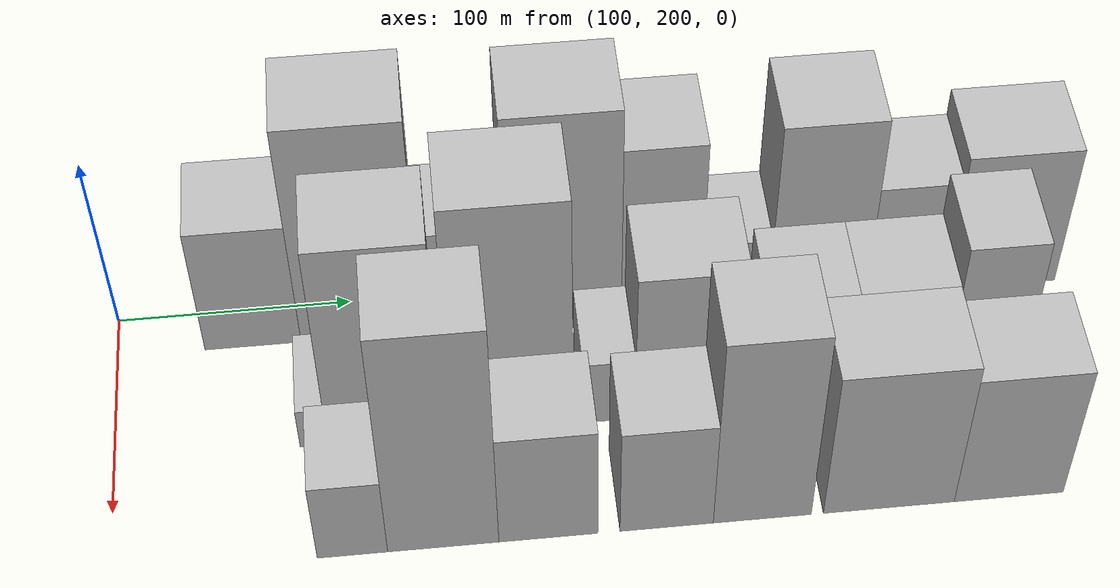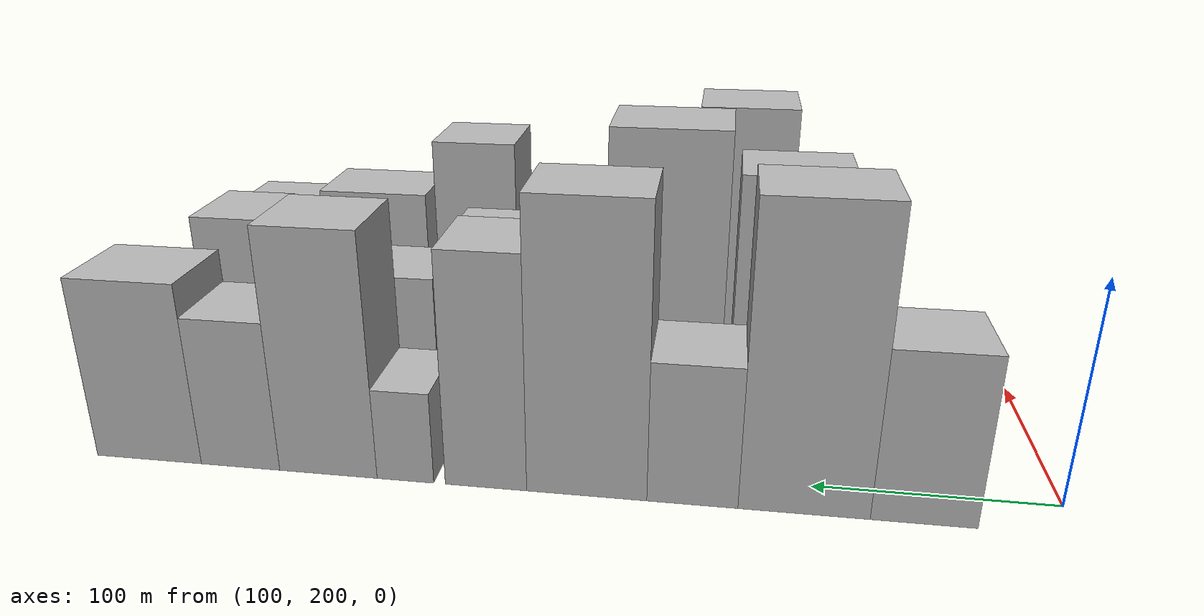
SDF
<sdf version="1.6">
 <world name="default">
  <model name="building_28">
   <static>1</static>
   <pose>100.0000 257.6946 0 0.000000 0.000000 0.000000</pose>
   <link name="link">
    <pose>0 0 37.50 0 0 0</pose>
    <collision name="collision"><geometry><box><size>40.0000 41.0869 75.0000</size></box></geometry></collision>
    <visual name="visual">
     <cast_shadows>0</cast_shadows>
     <geometry><box><size>40.0000 41.0869 75.0000</size></box></geometry>
     <material>
      <script>
       <uri>model://HANNAS_wall/materials/scripts</uri>
       <uri>model://HANNAS_wall/materials/textures</uri>
       <name>vrc/HANNAS_wall</name>
      </script>
     </material>
    </visual>
   </link>
  </model>
  <model name="building_29">
   <static>1</static>
   <pose>100.0000 304.1886 0 0.000000 0.000000 0.000000</pose>
   <link name="link">
    <pose>0 0 66.00 0 0 0</pose>
    <collision name="collision"><geometry><box><size>40.0000 51.9012 132.0000</size></box></geometry></collision>
    <visual name="visual">
     <cast_shadows>0</cast_shadows>
     <geometry><box><size>40.0000 51.9012 132.0000</size></box></geometry>
     <material>
      <script>
       <uri>model://HANNAS_wall/materials/scripts</uri>
       <uri>model://HANNAS_wall/materials/textures</uri>
       <name>vrc/HANNAS_wall</name>
      </script>
     </material>
    </visual>
   </link>
  </model>
  <model name="building_30">
   <static>1</static>
   <pose>100.0000 348.5221 0 0.000000 0.000000 0.000000</pose>
   <link name="link">
    <pose>0 0 31.50 0 0 0</pose>
    <collision name="collision"><geometry><box><size>40.0000 36.7659 63.0000</size></box></geometry></collision>
    <visual name="visual">
     <cast_shadows>0</cast_shadows>
     <geometry><box><size>40.0000 36.7659 63.0000</size></box></geometry>
     <material>
      <script>
       <uri>model://HANNAS_wall/materials/scripts</uri>
       <uri>model://HANNAS_wall/materials/textures</uri>
       <name>vrc/HANNAS_wall</name>
      </script>
     </material>
    </visual>
   </link>
  </model>
  <model name="building_31">
   <static>1</static>
   <pose>100.0000 391.8093 0 0.000000 0.000000 0.000000</pose>
   <link name="link">
    <pose>0 0 64.50 0 0 0</pose>
    <collision name="collision"><geometry><box><size>40.0000 49.8083 129.0000</size></box></geometry></collision>
    <visual name="visual">
     <cast_shadows>0</cast_shadows>
     <geometry><box><size>40.0000 49.8083 129.0000</size></box></geometry>
     <material>
      <script>
       <uri>model://HANNAS_wall/materials/scripts</uri>
       <uri>model://HANNAS_wall/materials/textures</uri>
       <name>vrc/HANNAS_wall</name>
      </script>
     </material>
    </visual>
   </link>
  </model>
  <model name="building_32">
   <static>1</static>
   <pose>100.0000 434.0224 0 0.000000 0.000000 0.000000</pose>
   <link name="link">
    <pose>0 0 52.50 0 0 0</pose>
    <collision name="collision"><geometry><box><size>40.0000 34.6179 105.0000</size></box></geometry></collision>
    <visual name="visual">
     <cast_shadows>0</cast_shadows>
     <geometry><box><size>40.0000 34.6179 105.0000</size></box></geometry>
     <material>
      <script>
       <uri>model://HANNAS_wall/materials/scripts</uri>
       <uri>model://HANNAS_wall/materials/textures</uri>
       <name>vrc/HANNAS_wall</name>
      </script>
     </material>
    </visual>
   </link>
  </model>
  <model name="building_33">
   <static>1</static>
   <pose>100.0000 468.6477 0 0.000000 0.000000 0.000000</pose>
   <link name="link">
    <pose>0 0 21.00 0 0 0</pose>
    <collision name="collision"><geometry><box><size>40.0000 24.6328 42.0000</size></box></geometry></collision>
    <visual name="visual">
     <cast_shadows>0</cast_shadows>
     <geometry><box><size>40.0000 24.6328 42.0000</size></box></geometry>
     <material>
      <script>
       <uri>model://HANNAS_wall/materials/scripts</uri>
       <uri>model://HANNAS_wall/materials/textures</uri>
       <name>vrc/HANNAS_wall</name>
      </script>
     </material>
    </visual>
   </link>
  </model>
  <model name="building_34">
   <static>1</static>
   <pose>100.0000 502.6056 0 0.000000 0.000000 0.000000</pose>
   <link name="link">
    <pose>0 0 55.50 0 0 0</pose>
    <collision name="collision"><geometry><box><size>40.0000 43.2830 111.0000</size></box></geometry></collision>
    <visual name="visual">
     <cast_shadows>0</cast_shadows>
     <geometry><box><size>40.0000 43.2830 111.0000</size></box></geometry>
     <material>
      <script>
       <uri>model://HANNAS_wall/materials/scripts</uri>
       <uri>model://HANNAS_wall/materials/textures</uri>
       <name>vrc/HANNAS_wall</name>
      </script>
     </material>
    </visual>
   </link>
  </model>
  <model name="building_35">
   <static>1</static>
   <pose>100.0000 542.0786 0 0.000000 0.000000 0.000000</pose>
   <link name="link">
    <pose>0 0 34.50 0 0 0</pose>
    <collision name="collision"><geometry><box><size>40.0000 35.6630 69.0000</size></box></geometry></collision>
    <visual name="visual">
     <cast_shadows>0</cast_shadows>
     <geometry><box><size>40.0000 35.6630 69.0000</size></box></geometry>
     <material>
      <script>
       <uri>model://HANNAS_wall/materials/scripts</uri>
       <uri>model://HANNAS_wall/materials/textures</uri>
       <name>vrc/HANNAS_wall</name>
      </script>
     </material>
    </visual>
   </link>
  </model>
  <model name="building_36">
   <static>1</static>
   <pose>100.0000 584.0762 0 0.000000 0.000000 0.000000</pose>
   <link name="link">
    <pose>0 0 42.00 0 0 0</pose>
    <collision name="collision"><geometry><box><size>40.0000 48.3321 84.0000</size></box></geometry></collision>
    <visual name="visual">
     <cast_shadows>0</cast_shadows>
     <geometry><box><size>40.0000 48.3321 84.0000</size></box></geometry>
     <material>
      <script>
       <uri>model://HANNAS_wall/materials/scripts</uri>
       <uri>model://HANNAS_wall/materials/textures</uri>
       <name>vrc/HANNAS_wall</name>
      </script>
     </material>
    </visual>
   </link>
  </model>
  <model name="building_59">
   <static>1</static>
   <pose>155.0000 282.2192 0 0.000000 0.000000 0.000000</pose>
   <link name="link">
    <pose>0 0 12.00 0 0 0</pose>
    <collision name="collision"><geometry><box><size>40.0000 11.4231 24.0000</size></box></geometry></collision>
    <visual name="visual">
     <cast_shadows>0</cast_shadows>
     <geometry><box><size>40.0000 11.4231 24.0000</size></box></geometry>
     <material>
      <script>
       <uri>model://HANNAS_wall/materials/scripts</uri>
       <uri>model://HANNAS_wall/materials/textures</uri>
       <name>vrc/HANNAS_wall</name>
      </script>
     </material>
    </visual>
   </link>
  </model>
  <model name="building_60">
   <static>1</static>
   <pose>155.0000 311.7160 0 0.000000 0.000000 0.000000</pose>
   <link name="link">
    <pose>0 0 61.50 0 0 0</pose>
    <collision name="collision"><geometry><box><size>40.0000 47.5704 123.0000</size></box></geometry></collision>
    <visual name="visual">
     <cast_shadows>0</cast_shadows>
     <geometry><box><size>40.0000 47.5704 123.0000</size></box></geometry>
     <material>
      <script>
       <uri>model://HANNAS_wall/materials/scripts</uri>
       <uri>model://HANNAS_wall/materials/textures</uri>
       <name>vrc/HANNAS_wall</name>
      </script>
     </material>
    </visual>
   </link>
  </model>
  <model name="building_61">
   <static>1</static>
   <pose>155.0000 364.9807 0 0.000000 0.000000 0.000000</pose>
   <link name="link">
    <pose>0 0 70.50 0 0 0</pose>
    <collision name="collision"><geometry><box><size>40.0000 50.9590 141.0000</size></box></geometry></collision>
    <visual name="visual">
     <cast_shadows>0</cast_shadows>
     <geometry><box><size>40.0000 50.9590 141.0000</size></box></geometry>
     <material>
      <script>
       <uri>model://HANNAS_wall/materials/scripts</uri>
       <uri>model://HANNAS_wall/materials/textures</uri>
       <name>vrc/HANNAS_wall</name>
      </script>
     </material>
    </visual>
   </link>
  </model>
  <model name="building_62">
   <static>1</static>
   <pose>155.0000 405.3605 0 0.000000 0.000000 0.000000</pose>
   <link name="link">
    <pose>0 0 19.50 0 0 0</pose>
    <collision name="collision"><geometry><box><size>40.0000 21.8006 39.0000</size></box></geometry></collision>
    <visual name="visual">
     <cast_shadows>0</cast_shadows>
     <geometry><box><size>40.0000 21.8006 39.0000</size></box></geometry>
     <material>
      <script>
       <uri>model://HANNAS_wall/materials/scripts</uri>
       <uri>model://HANNAS_wall/materials/textures</uri>
       <name>vrc/HANNAS_wall</name>
      </script>
     </material>
    </visual>
   </link>
  </model>
  <model name="building_63">
   <static>1</static>
   <pose>155.0000 438.8114 0 0.000000 0.000000 0.000000</pose>
   <link name="link">
    <pose>0 0 45.00 0 0 0</pose>
    <collision name="collision"><geometry><box><size>40.0000 45.1012 90.0000</size></box></geometry></collision>
    <visual name="visual">
     <cast_shadows>0</cast_shadows>
     <geometry><box><size>40.0000 45.1012 90.0000</size></box></geometry>
     <material>
      <script>
       <uri>model://HANNAS_wall/materials/scripts</uri>
       <uri>model://HANNAS_wall/materials/textures</uri>
       <name>vrc/HANNAS_wall</name>
      </script>
     </material>
    </visual>
   </link>
  </model>
  <model name="building_64">
   <static>1</static>
   <pose>155.0000 465.0333 0 0.000000 0.000000 0.000000</pose>
   <link name="link">
    <pose>0 0 9.00 0 0 0</pose>
    <collision name="collision"><geometry><box><size>40.0000 7.3426 18.0000</size></box></geometry></collision>
    <visual name="visual">
     <cast_shadows>0</cast_shadows>
     <geometry><box><size>40.0000 7.3426 18.0000</size></box></geometry>
     <material>
      <script>
       <uri>model://HANNAS_wall/materials/scripts</uri>
       <uri>model://HANNAS_wall/materials/textures</uri>
       <name>vrc/HANNAS_wall</name>
      </script>
     </material>
    </visual>
   </link>
  </model>
  <model name="building_65">
   <static>1</static>
   <pose>155.0000 487.4993 0 0.000000 0.000000 0.000000</pose>
   <link name="link">
    <pose>0 0 34.50 0 0 0</pose>
    <collision name="collision"><geometry><box><size>40.0000 37.5892 69.0000</size></box></geometry></collision>
    <visual name="visual">
     <cast_shadows>0</cast_shadows>
     <geometry><box><size>40.0000 37.5892 69.0000</size></box></geometry>
     <material>
      <script>
       <uri>model://HANNAS_wall/materials/scripts</uri>
       <uri>model://HANNAS_wall/materials/textures</uri>
       <name>vrc/HANNAS_wall</name>
      </script>
     </material>
    </visual>
   </link>
  </model>
  <model name="building_66">
   <static>1</static>
   <pose>155.0000 526.6850 0 0.000000 0.000000 0.000000</pose>
   <link name="link">
    <pose>0 0 34.50 0 0 0</pose>
    <collision name="collision"><geometry><box><size>40.0000 40.7823 69.0000</size></box></geometry></collision>
    <visual name="visual">
     <cast_shadows>0</cast_shadows>
     <geometry><box><size>40.0000 40.7823 69.0000</size></box></geometry>
     <material>
      <script>
       <uri>model://HANNAS_wall/materials/scripts</uri>
       <uri>model://HANNAS_wall/materials/textures</uri>
       <name>vrc/HANNAS_wall</name>
      </script>
     </material>
    </visual>
   </link>
  </model>
  <model name="building_67">
   <static>1</static>
   <pose>155.0000 563.6195 0 0.000000 0.000000 0.000000</pose>
   <link name="link">
    <pose>0 0 46.50 0 0 0</pose>
    <collision name="collision"><geometry><box><size>40.0000 33.0865 93.0000</size></box></geometry></collision>
    <visual name="visual">
     <cast_shadows>0</cast_shadows>
     <geometry><box><size>40.0000 33.0865 93.0000</size></box></geometry>
     <material>
      <script>
       <uri>model://HANNAS_wall/materials/scripts</uri>
       <uri>model://HANNAS_wall/materials/textures</uri>
       <name>vrc/HANNAS_wall</name>
      </script>
     </material>
    </visual>
   </link>
  </model>
  <model name="building_91">
   <static>1</static>
   <pose>210.0000 296.0244 0 0.000000 0.000000 0.000000</pose>
   <link name="link">
    <pose>0 0 24.00 0 0 0</pose>
    <collision name="collision"><geometry><box><size>40.0000 28.1392 48.0000</size></box></geometry></collision>
    <visual name="visual">
     <cast_shadows>0</cast_shadows>
     <geometry><box><size>40.0000 28.1392 48.0000</size></box></geometry>
     <material>
      <script>
       <uri>model://HANNAS_wall/materials/scripts</uri>
       <uri>model://HANNAS_wall/materials/textures</uri>
       <name>vrc/HANNAS_wall</name>
      </script>
     </material>
    </visual>
   </link>
  </model>
  <model name="building_92">
   <static>1</static>
   <pose>210.0000 332.4277 0 0.000000 0.000000 0.000000</pose>
   <link name="link">
    <pose>0 0 69.00 0 0 0</pose>
    <collision name="collision"><geometry><box><size>40.0000 44.6673 138.0000</size></box></geometry></collision>
    <visual name="visual">
     <cast_shadows>0</cast_shadows>
     <geometry><box><size>40.0000 44.6673 138.0000</size></box></geometry>
     <material>
      <script>
       <uri>model://HANNAS_wall/materials/scripts</uri>
       <uri>model://HANNAS_wall/materials/textures</uri>
       <name>vrc/HANNAS_wall</name>
      </script>
     </material>
    </visual>
   </link>
  </model>
  <model name="building_93">
   <static>1</static>
   <pose>210.0000 374.7470 0 0.000000 0.000000 0.000000</pose>
   <link name="link">
    <pose>0 0 34.50 0 0 0</pose>
    <collision name="collision"><geometry><box><size>40.0000 39.9712 69.0000</size></box></geometry></collision>
    <visual name="visual">
     <cast_shadows>0</cast_shadows>
     <geometry><box><size>40.0000 39.9712 69.0000</size></box></geometry>
     <material>
      <script>
       <uri>model://HANNAS_wall/materials/scripts</uri>
       <uri>model://HANNAS_wall/materials/textures</uri>
       <name>vrc/HANNAS_wall</name>
      </script>
     </material>
    </visual>
   </link>
  </model>
  <model name="building_94">
   <static>1</static>
   <pose>210.0000 422.7066 0 0.000000 0.000000 0.000000</pose>
   <link name="link">
    <pose>0 0 33.00 0 0 0</pose>
    <collision name="collision"><geometry><box><size>40.0000 37.9480 66.0000</size></box></geometry></collision>
    <visual name="visual">
     <cast_shadows>0</cast_shadows>
     <geometry><box><size>40.0000 37.9480 66.0000</size></box></geometry>
     <material>
      <script>
       <uri>model://HANNAS_wall/materials/scripts</uri>
       <uri>model://HANNAS_wall/materials/textures</uri>
       <name>vrc/HANNAS_wall</name>
      </script>
     </material>
    </visual>
   </link>
  </model>
  <model name="building_95">
   <static>1</static>
   <pose>210.0000 461.7203 0 0.000000 0.000000 0.000000</pose>
   <link name="link">
    <pose>0 0 58.50 0 0 0</pose>
    <collision name="collision"><geometry><box><size>40.0000 40.0795 117.0000</size></box></geometry></collision>
    <visual name="visual">
     <cast_shadows>0</cast_shadows>
     <geometry><box><size>40.0000 40.0795 117.0000</size></box></geometry>
     <material>
      <script>
       <uri>model://HANNAS_wall/materials/scripts</uri>
       <uri>model://HANNAS_wall/materials/textures</uri>
       <name>vrc/HANNAS_wall</name>
      </script>
     </material>
    </visual>
   </link>
  </model>
  <model name="building_96">
   <static>1</static>
   <pose>210.0000 513.7127 0 0.000000 0.000000 0.000000</pose>
   <link name="link">
    <pose>0 0 45.00 0 0 0</pose>
    <collision name="collision"><geometry><box><size>40.0000 53.9052 90.0000</size></box></geometry></collision>
    <visual name="visual">
     <cast_shadows>0</cast_shadows>
     <geometry><box><size>40.0000 53.9052 90.0000</size></box></geometry>
     <material>
      <script>
       <uri>model://HANNAS_wall/materials/scripts</uri>
       <uri>model://HANNAS_wall/materials/textures</uri>
       <name>vrc/HANNAS_wall</name>
      </script>
     </material>
    </visual>
   </link>
  </model>
  <model name="building_97">
   <static>1</static>
   <pose>210.0000 563.2633 0 0.000000 0.000000 0.000000</pose>
   <link name="link">
    <pose>0 0 40.50 0 0 0</pose>
    <collision name="collision"><geometry><box><size>40.0000 45.1959 81.0000</size></box></geometry></collision>
    <visual name="visual">
     <cast_shadows>0</cast_shadows>
     <geometry><box><size>40.0000 45.1959 81.0000</size></box></geometry>
     <material>
      <script>
       <uri>model://HANNAS_wall/materials/scripts</uri>
       <uri>model://HANNAS_wall/materials/textures</uri>
       <name>vrc/HANNAS_wall</name>
      </script>
     </material>
    </visual>
   </link>
  </model>
 </world>
</sdf>
